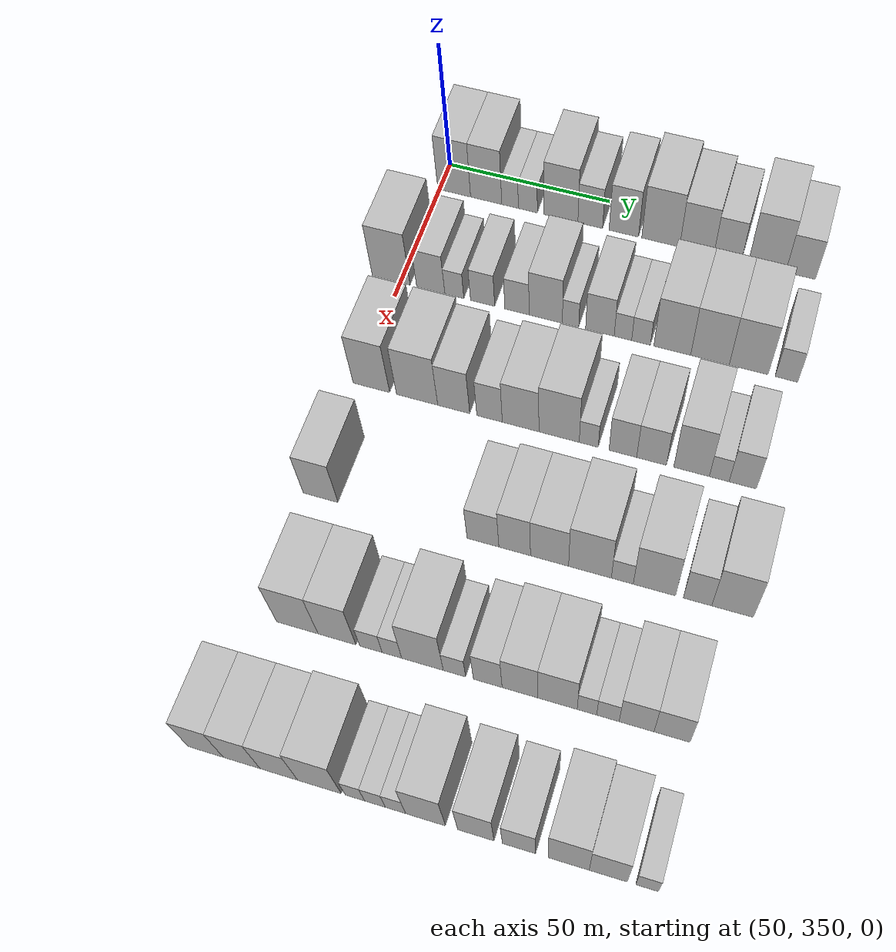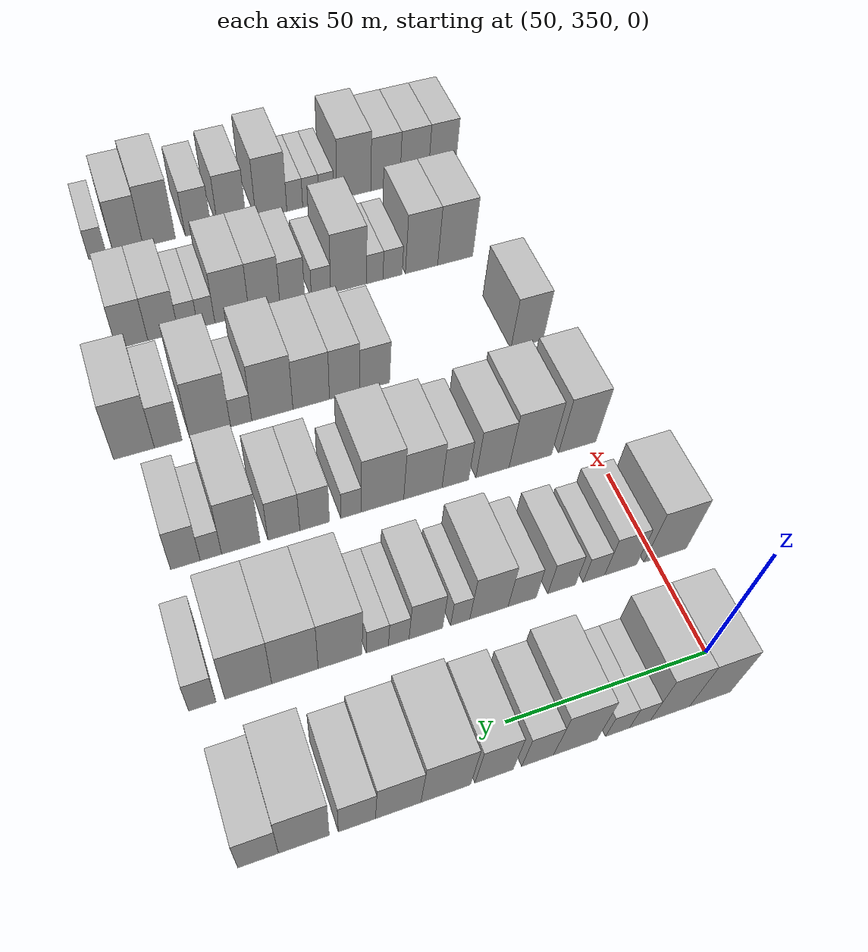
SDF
<sdf version="1.6">
 <world name="default">
  <model name="building_94">
   <static>1</static>
   <pose>50.0000 354.5466 0 0.000000 0.000000 0.000000</pose>
   <link name="link">
    <pose>0 0 12.00 0 0 0</pose>
    <collision name="collision"><geometry><box><size>20.0000 10.2900 24.0000</size></box></geometry></collision>
    <visual name="visual">
     <cast_shadows>0</cast_shadows>
     <geometry><box><size>20.0000 10.2900 24.0000</size></box></geometry>
     <material>
      <script>
       <uri>model://HANNAS_wall/materials/scripts</uri>
       <uri>model://HANNAS_wall/materials/textures</uri>
       <name>vrc/HANNAS_wall</name>
      </script>
     </material>
    </visual>
   </link>
  </model>
  <model name="building_95">
   <static>1</static>
   <pose>50.0000 364.5611 0 0.000000 0.000000 0.000000</pose>
   <link name="link">
    <pose>0 0 12.00 0 0 0</pose>
    <collision name="collision"><geometry><box><size>20.0000 9.7390 24.0000</size></box></geometry></collision>
    <visual name="visual">
     <cast_shadows>0</cast_shadows>
     <geometry><box><size>20.0000 9.7390 24.0000</size></box></geometry>
     <material>
      <script>
       <uri>model://HANNAS_wall/materials/scripts</uri>
       <uri>model://HANNAS_wall/materials/textures</uri>
       <name>vrc/HANNAS_wall</name>
      </script>
     </material>
    </visual>
   </link>
  </model>
  <model name="building_96">
   <static>1</static>
   <pose>50.0000 372.0114 0 0.000000 0.000000 0.000000</pose>
   <link name="link">
    <pose>0 0 6.00 0 0 0</pose>
    <collision name="collision"><geometry><box><size>20.0000 5.1617 12.0000</size></box></geometry></collision>
    <visual name="visual">
     <cast_shadows>0</cast_shadows>
     <geometry><box><size>20.0000 5.1617 12.0000</size></box></geometry>
     <material>
      <script>
       <uri>model://HANNAS_wall/materials/scripts</uri>
       <uri>model://HANNAS_wall/materials/textures</uri>
       <name>vrc/HANNAS_wall</name>
      </script>
     </material>
    </visual>
   </link>
  </model>
  <model name="building_97">
   <static>1</static>
   <pose>50.0000 377.5267 0 0.000000 0.000000 0.000000</pose>
   <link name="link">
    <pose>0 0 6.00 0 0 0</pose>
    <collision name="collision"><geometry><box><size>20.0000 5.8690 12.0000</size></box></geometry></collision>
    <visual name="visual">
     <cast_shadows>0</cast_shadows>
     <geometry><box><size>20.0000 5.8690 12.0000</size></box></geometry>
     <material>
      <script>
       <uri>model://HANNAS_wall/materials/scripts</uri>
       <uri>model://HANNAS_wall/materials/textures</uri>
       <name>vrc/HANNAS_wall</name>
      </script>
     </material>
    </visual>
   </link>
  </model>
  <model name="building_98">
   <static>1</static>
   <pose>50.0000 387.6979 0 0.000000 0.000000 0.000000</pose>
   <link name="link">
    <pose>0 0 12.00 0 0 0</pose>
    <collision name="collision"><geometry><box><size>20.0000 10.4733 24.0000</size></box></geometry></collision>
    <visual name="visual">
     <cast_shadows>0</cast_shadows>
     <geometry><box><size>20.0000 10.4733 24.0000</size></box></geometry>
     <material>
      <script>
       <uri>model://HANNAS_wall/materials/scripts</uri>
       <uri>model://HANNAS_wall/materials/textures</uri>
       <name>vrc/HANNAS_wall</name>
      </script>
     </material>
    </visual>
   </link>
  </model>
  <model name="building_99">
   <static>1</static>
   <pose>50.0000 396.7069 0 0.000000 0.000000 0.000000</pose>
   <link name="link">
    <pose>0 0 9.00 0 0 0</pose>
    <collision name="collision"><geometry><box><size>20.0000 7.5447 18.0000</size></box></geometry></collision>
    <visual name="visual">
     <cast_shadows>0</cast_shadows>
     <geometry><box><size>20.0000 7.5447 18.0000</size></box></geometry>
     <material>
      <script>
       <uri>model://HANNAS_wall/materials/scripts</uri>
       <uri>model://HANNAS_wall/materials/textures</uri>
       <name>vrc/HANNAS_wall</name>
      </script>
     </material>
    </visual>
   </link>
  </model>
  <model name="building_100">
   <static>1</static>
   <pose>50.0000 406.9317 0 0.000000 0.000000 0.000000</pose>
   <link name="link">
    <pose>0 0 10.50 0 0 0</pose>
    <collision name="collision"><geometry><box><size>20.0000 8.9051 21.0000</size></box></geometry></collision>
    <visual name="visual">
     <cast_shadows>0</cast_shadows>
     <geometry><box><size>20.0000 8.9051 21.0000</size></box></geometry>
     <material>
      <script>
       <uri>model://HANNAS_wall/materials/scripts</uri>
       <uri>model://HANNAS_wall/materials/textures</uri>
       <name>vrc/HANNAS_wall</name>
      </script>
     </material>
    </visual>
   </link>
  </model>
  <model name="building_101">
   <static>1</static>
   <pose>50.0000 418.0824 0 0.000000 0.000000 0.000000</pose>
   <link name="link">
    <pose>0 0 12.00 0 0 0</pose>
    <collision name="collision"><geometry><box><size>20.0000 11.3962 24.0000</size></box></geometry></collision>
    <visual name="visual">
     <cast_shadows>0</cast_shadows>
     <geometry><box><size>20.0000 11.3962 24.0000</size></box></geometry>
     <material>
      <script>
       <uri>model://HANNAS_wall/materials/scripts</uri>
       <uri>model://HANNAS_wall/materials/textures</uri>
       <name>vrc/HANNAS_wall</name>
      </script>
     </material>
    </visual>
   </link>
  </model>
  <model name="building_102">
   <static>1</static>
   <pose>50.0000 428.8748 0 0.000000 0.000000 0.000000</pose>
   <link name="link">
    <pose>0 0 10.50 0 0 0</pose>
    <collision name="collision"><geometry><box><size>20.0000 10.1886 21.0000</size></box></geometry></collision>
    <visual name="visual">
     <cast_shadows>0</cast_shadows>
     <geometry><box><size>20.0000 10.1886 21.0000</size></box></geometry>
     <material>
      <script>
       <uri>model://HANNAS_wall/materials/scripts</uri>
       <uri>model://HANNAS_wall/materials/textures</uri>
       <name>vrc/HANNAS_wall</name>
      </script>
     </material>
    </visual>
   </link>
  </model>
  <model name="building_103">
   <static>1</static>
   <pose>50.0000 438.0802 0 0.000000 0.000000 0.000000</pose>
   <link name="link">
    <pose>0 0 9.00 0 0 0</pose>
    <collision name="collision"><geometry><box><size>20.0000 8.2222 18.0000</size></box></geometry></collision>
    <visual name="visual">
     <cast_shadows>0</cast_shadows>
     <geometry><box><size>20.0000 8.2222 18.0000</size></box></geometry>
     <material>
      <script>
       <uri>model://HANNAS_wall/materials/scripts</uri>
       <uri>model://HANNAS_wall/materials/textures</uri>
       <name>vrc/HANNAS_wall</name>
      </script>
     </material>
    </visual>
   </link>
  </model>
  <model name="building_104">
   <static>1</static>
   <pose>50.0000 449.7015 0 0.000000 0.000000 0.000000</pose>
   <link name="link">
    <pose>0 0 12.00 0 0 0</pose>
    <collision name="collision"><geometry><box><size>20.0000 11.0204 24.0000</size></box></geometry></collision>
    <visual name="visual">
     <cast_shadows>0</cast_shadows>
     <geometry><box><size>20.0000 11.0204 24.0000</size></box></geometry>
     <material>
      <script>
       <uri>model://HANNAS_wall/materials/scripts</uri>
       <uri>model://HANNAS_wall/materials/textures</uri>
       <name>vrc/HANNAS_wall</name>
      </script>
     </material>
    </visual>
   </link>
  </model>
  <model name="building_105">
   <static>1</static>
   <pose>50.0000 459.5605 0 0.000000 0.000000 0.000000</pose>
   <link name="link">
    <pose>0 0 9.00 0 0 0</pose>
    <collision name="collision"><geometry><box><size>20.0000 8.6976 18.0000</size></box></geometry></collision>
    <visual name="visual">
     <cast_shadows>0</cast_shadows>
     <geometry><box><size>20.0000 8.6976 18.0000</size></box></geometry>
     <material>
      <script>
       <uri>model://HANNAS_wall/materials/scripts</uri>
       <uri>model://HANNAS_wall/materials/textures</uri>
       <name>vrc/HANNAS_wall</name>
      </script>
     </material>
    </visual>
   </link>
  </model>
  <model name="building_212">
   <static>1</static>
   <pose>85.0000 347.1008 0 0.000000 0.000000 0.000000</pose>
   <link name="link">
    <pose>0 0 12.00 0 0 0</pose>
    <collision name="collision"><geometry><box><size>20.0000 11.4815 24.0000</size></box></geometry></collision>
    <visual name="visual">
     <cast_shadows>0</cast_shadows>
     <geometry><box><size>20.0000 11.4815 24.0000</size></box></geometry>
     <material>
      <script>
       <uri>model://HANNAS_wall/materials/scripts</uri>
       <uri>model://HANNAS_wall/materials/textures</uri>
       <name>vrc/HANNAS_wall</name>
      </script>
     </material>
    </visual>
   </link>
  </model>
  <model name="building_213">
   <static>1</static>
   <pose>85.0000 359.1001 0 0.000000 0.000000 0.000000</pose>
   <link name="link">
    <pose>0 0 9.00 0 0 0</pose>
    <collision name="collision"><geometry><box><size>20.0000 8.5172 18.0000</size></box></geometry></collision>
    <visual name="visual">
     <cast_shadows>0</cast_shadows>
     <geometry><box><size>20.0000 8.5172 18.0000</size></box></geometry>
     <material>
      <script>
       <uri>model://HANNAS_wall/materials/scripts</uri>
       <uri>model://HANNAS_wall/materials/textures</uri>
       <name>vrc/HANNAS_wall</name>
      </script>
     </material>
    </visual>
   </link>
  </model>
  <model name="building_214">
   <static>1</static>
   <pose>85.0000 366.2056 0 0.000000 0.000000 0.000000</pose>
   <link name="link">
    <pose>0 0 6.00 0 0 0</pose>
    <collision name="collision"><geometry><box><size>20.0000 5.6938 12.0000</size></box></geometry></collision>
    <visual name="visual">
     <cast_shadows>0</cast_shadows>
     <geometry><box><size>20.0000 5.6938 12.0000</size></box></geometry>
     <material>
      <script>
       <uri>model://HANNAS_wall/materials/scripts</uri>
       <uri>model://HANNAS_wall/materials/textures</uri>
       <name>vrc/HANNAS_wall</name>
      </script>
     </material>
    </visual>
   </link>
  </model>
  <model name="building_215">
   <static>1</static>
   <pose>85.0000 374.6662 0 0.000000 0.000000 0.000000</pose>
   <link name="link">
    <pose>0 0 7.50 0 0 0</pose>
    <collision name="collision"><geometry><box><size>20.0000 7.2275 15.0000</size></box></geometry></collision>
    <visual name="visual">
     <cast_shadows>0</cast_shadows>
     <geometry><box><size>20.0000 7.2275 15.0000</size></box></geometry>
     <material>
      <script>
       <uri>model://HANNAS_wall/materials/scripts</uri>
       <uri>model://HANNAS_wall/materials/textures</uri>
       <name>vrc/HANNAS_wall</name>
      </script>
     </material>
    </visual>
   </link>
  </model>
  <model name="building_216">
   <static>1</static>
   <pose>85.0000 384.8877 0 0.000000 0.000000 0.000000</pose>
   <link name="link">
    <pose>0 0 7.50 0 0 0</pose>
    <collision name="collision"><geometry><box><size>20.0000 7.2155 15.0000</size></box></geometry></collision>
    <visual name="visual">
     <cast_shadows>0</cast_shadows>
     <geometry><box><size>20.0000 7.2155 15.0000</size></box></geometry>
     <material>
      <script>
       <uri>model://HANNAS_wall/materials/scripts</uri>
       <uri>model://HANNAS_wall/materials/textures</uri>
       <name>vrc/HANNAS_wall</name>
      </script>
     </material>
    </visual>
   </link>
  </model>
  <model name="building_217">
   <static>1</static>
   <pose>85.0000 393.3766 0 0.000000 0.000000 0.000000</pose>
   <link name="link">
    <pose>0 0 10.50 0 0 0</pose>
    <collision name="collision"><geometry><box><size>20.0000 9.7621 21.0000</size></box></geometry></collision>
    <visual name="visual">
     <cast_shadows>0</cast_shadows>
     <geometry><box><size>20.0000 9.7621 21.0000</size></box></geometry>
     <material>
      <script>
       <uri>model://HANNAS_wall/materials/scripts</uri>
       <uri>model://HANNAS_wall/materials/textures</uri>
       <name>vrc/HANNAS_wall</name>
      </script>
     </material>
    </visual>
   </link>
  </model>
  <model name="building_218">
   <static>1</static>
   <pose>85.0000 400.6686 0 0.000000 0.000000 0.000000</pose>
   <link name="link">
    <pose>0 0 6.00 0 0 0</pose>
    <collision name="collision"><geometry><box><size>20.0000 4.8220 12.0000</size></box></geometry></collision>
    <visual name="visual">
     <cast_shadows>0</cast_shadows>
     <geometry><box><size>20.0000 4.8220 12.0000</size></box></geometry>
     <material>
      <script>
       <uri>model://HANNAS_wall/materials/scripts</uri>
       <uri>model://HANNAS_wall/materials/textures</uri>
       <name>vrc/HANNAS_wall</name>
      </script>
     </material>
    </visual>
   </link>
  </model>
  <model name="building_219">
   <static>1</static>
   <pose>85.0000 409.2435 0 0.000000 0.000000 0.000000</pose>
   <link name="link">
    <pose>0 0 9.00 0 0 0</pose>
    <collision name="collision"><geometry><box><size>20.0000 8.3278 18.0000</size></box></geometry></collision>
    <visual name="visual">
     <cast_shadows>0</cast_shadows>
     <geometry><box><size>20.0000 8.3278 18.0000</size></box></geometry>
     <material>
      <script>
       <uri>model://HANNAS_wall/materials/scripts</uri>
       <uri>model://HANNAS_wall/materials/textures</uri>
       <name>vrc/HANNAS_wall</name>
      </script>
     </material>
    </visual>
   </link>
  </model>
  <model name="building_220">
   <static>1</static>
   <pose>85.0000 415.9351 0 0.000000 0.000000 0.000000</pose>
   <link name="link">
    <pose>0 0 6.00 0 0 0</pose>
    <collision name="collision"><geometry><box><size>20.0000 5.0555 12.0000</size></box></geometry></collision>
    <visual name="visual">
     <cast_shadows>0</cast_shadows>
     <geometry><box><size>20.0000 5.0555 12.0000</size></box></geometry>
     <material>
      <script>
       <uri>model://HANNAS_wall/materials/scripts</uri>
       <uri>model://HANNAS_wall/materials/textures</uri>
       <name>vrc/HANNAS_wall</name>
      </script>
     </material>
    </visual>
   </link>
  </model>
  <model name="building_221">
   <static>1</static>
   <pose>85.0000 421.1680 0 0.000000 0.000000 0.000000</pose>
   <link name="link">
    <pose>0 0 6.00 0 0 0</pose>
    <collision name="collision"><geometry><box><size>20.0000 5.4103 12.0000</size></box></geometry></collision>
    <visual name="visual">
     <cast_shadows>0</cast_shadows>
     <geometry><box><size>20.0000 5.4103 12.0000</size></box></geometry>
     <material>
      <script>
       <uri>model://HANNAS_wall/materials/scripts</uri>
       <uri>model://HANNAS_wall/materials/textures</uri>
       <name>vrc/HANNAS_wall</name>
      </script>
     </material>
    </visual>
   </link>
  </model>
  <model name="building_222">
   <static>1</static>
   <pose>85.0000 430.1573 0 0.000000 0.000000 0.000000</pose>
   <link name="link">
    <pose>0 0 12.00 0 0 0</pose>
    <collision name="collision"><geometry><box><size>20.0000 10.5683 24.0000</size></box></geometry></collision>
    <visual name="visual">
     <cast_shadows>0</cast_shadows>
     <geometry><box><size>20.0000 10.5683 24.0000</size></box></geometry>
     <material>
      <script>
       <uri>model://HANNAS_wall/materials/scripts</uri>
       <uri>model://HANNAS_wall/materials/textures</uri>
       <name>vrc/HANNAS_wall</name>
      </script>
     </material>
    </visual>
   </link>
  </model>
  <model name="building_223">
   <static>1</static>
   <pose>85.0000 440.9316 0 0.000000 0.000000 0.000000</pose>
   <link name="link">
    <pose>0 0 12.00 0 0 0</pose>
    <collision name="collision"><geometry><box><size>20.0000 10.9803 24.0000</size></box></geometry></collision>
    <visual name="visual">
     <cast_shadows>0</cast_shadows>
     <geometry><box><size>20.0000 10.9803 24.0000</size></box></geometry>
     <material>
      <script>
       <uri>model://HANNAS_wall/materials/scripts</uri>
       <uri>model://HANNAS_wall/materials/textures</uri>
       <name>vrc/HANNAS_wall</name>
      </script>
     </material>
    </visual>
   </link>
  </model>
  <model name="building_224">
   <static>1</static>
   <pose>85.0000 451.8885 0 0.000000 0.000000 0.000000</pose>
   <link name="link">
    <pose>0 0 12.00 0 0 0</pose>
    <collision name="collision"><geometry><box><size>20.0000 10.9335 24.0000</size></box></geometry></collision>
    <visual name="visual">
     <cast_shadows>0</cast_shadows>
     <geometry><box><size>20.0000 10.9335 24.0000</size></box></geometry>
     <material>
      <script>
       <uri>model://HANNAS_wall/materials/scripts</uri>
       <uri>model://HANNAS_wall/materials/textures</uri>
       <name>vrc/HANNAS_wall</name>
      </script>
     </material>
    </visual>
   </link>
  </model>
  <model name="building_225">
   <static>1</static>
   <pose>85.0000 462.5048 0 0.000000 0.000000 0.000000</pose>
   <link name="link">
    <pose>0 0 7.50 0 0 0</pose>
    <collision name="collision"><geometry><box><size>20.0000 6.2992 15.0000</size></box></geometry></collision>
    <visual name="visual">
     <cast_shadows>0</cast_shadows>
     <geometry><box><size>20.0000 6.2992 15.0000</size></box></geometry>
     <material>
      <script>
       <uri>model://HANNAS_wall/materials/scripts</uri>
       <uri>model://HANNAS_wall/materials/textures</uri>
       <name>vrc/HANNAS_wall</name>
      </script>
     </material>
    </visual>
   </link>
  </model>
  <model name="building_336">
   <static>1</static>
   <pose>120.0000 353.8546 0 0.000000 0.000000 0.000000</pose>
   <link name="link">
    <pose>0 0 12.00 0 0 0</pose>
    <collision name="collision"><geometry><box><size>20.0000 10.6333 24.0000</size></box></geometry></collision>
    <visual name="visual">
     <cast_shadows>0</cast_shadows>
     <geometry><box><size>20.0000 10.6333 24.0000</size></box></geometry>
     <material>
      <script>
       <uri>model://HANNAS_wall/materials/scripts</uri>
       <uri>model://HANNAS_wall/materials/textures</uri>
       <name>vrc/HANNAS_wall</name>
      </script>
     </material>
    </visual>
   </link>
  </model>
  <model name="building_337">
   <static>1</static>
   <pose>120.0000 367.1139 0 0.000000 0.000000 0.000000</pose>
   <link name="link">
    <pose>0 0 12.00 0 0 0</pose>
    <collision name="collision"><geometry><box><size>20.0000 11.8853 24.0000</size></box></geometry></collision>
    <visual name="visual">
     <cast_shadows>0</cast_shadows>
     <geometry><box><size>20.0000 11.8853 24.0000</size></box></geometry>
     <material>
      <script>
       <uri>model://HANNAS_wall/materials/scripts</uri>
       <uri>model://HANNAS_wall/materials/textures</uri>
       <name>vrc/HANNAS_wall</name>
      </script>
     </material>
    </visual>
   </link>
  </model>
  <model name="building_338">
   <static>1</static>
   <pose>120.0000 377.6406 0 0.000000 0.000000 0.000000</pose>
   <link name="link">
    <pose>0 0 10.50 0 0 0</pose>
    <collision name="collision"><geometry><box><size>20.0000 9.1682 21.0000</size></box></geometry></collision>
    <visual name="visual">
     <cast_shadows>0</cast_shadows>
     <geometry><box><size>20.0000 9.1682 21.0000</size></box></geometry>
     <material>
      <script>
       <uri>model://HANNAS_wall/materials/scripts</uri>
       <uri>model://HANNAS_wall/materials/textures</uri>
       <name>vrc/HANNAS_wall</name>
      </script>
     </material>
    </visual>
   </link>
  </model>
  <model name="building_339">
   <static>1</static>
   <pose>120.0000 387.8453 0 0.000000 0.000000 0.000000</pose>
   <link name="link">
    <pose>0 0 9.00 0 0 0</pose>
    <collision name="collision"><geometry><box><size>20.0000 7.2413 18.0000</size></box></geometry></collision>
    <visual name="visual">
     <cast_shadows>0</cast_shadows>
     <geometry><box><size>20.0000 7.2413 18.0000</size></box></geometry>
     <material>
      <script>
       <uri>model://HANNAS_wall/materials/scripts</uri>
       <uri>model://HANNAS_wall/materials/textures</uri>
       <name>vrc/HANNAS_wall</name>
      </script>
     </material>
    </visual>
   </link>
  </model>
  <model name="building_340">
   <static>1</static>
   <pose>120.0000 396.6244 0 0.000000 0.000000 0.000000</pose>
   <link name="link">
    <pose>0 0 10.50 0 0 0</pose>
    <collision name="collision"><geometry><box><size>20.0000 10.3169 21.0000</size></box></geometry></collision>
    <visual name="visual">
     <cast_shadows>0</cast_shadows>
     <geometry><box><size>20.0000 10.3169 21.0000</size></box></geometry>
     <material>
      <script>
       <uri>model://HANNAS_wall/materials/scripts</uri>
       <uri>model://HANNAS_wall/materials/textures</uri>
       <name>vrc/HANNAS_wall</name>
      </script>
     </material>
    </visual>
   </link>
  </model>
  <model name="building_341">
   <static>1</static>
   <pose>120.0000 407.4312 0 0.000000 0.000000 0.000000</pose>
   <link name="link">
    <pose>0 0 12.00 0 0 0</pose>
    <collision name="collision"><geometry><box><size>20.0000 11.2969 24.0000</size></box></geometry></collision>
    <visual name="visual">
     <cast_shadows>0</cast_shadows>
     <geometry><box><size>20.0000 11.2969 24.0000</size></box></geometry>
     <material>
      <script>
       <uri>model://HANNAS_wall/materials/scripts</uri>
       <uri>model://HANNAS_wall/materials/textures</uri>
       <name>vrc/HANNAS_wall</name>
      </script>
     </material>
    </visual>
   </link>
  </model>
  <model name="building_342">
   <static>1</static>
   <pose>120.0000 415.7270 0 0.000000 0.000000 0.000000</pose>
   <link name="link">
    <pose>0 0 6.00 0 0 0</pose>
    <collision name="collision"><geometry><box><size>20.0000 5.2947 12.0000</size></box></geometry></collision>
    <visual name="visual">
     <cast_shadows>0</cast_shadows>
     <geometry><box><size>20.0000 5.2947 12.0000</size></box></geometry>
     <material>
      <script>
       <uri>model://HANNAS_wall/materials/scripts</uri>
       <uri>model://HANNAS_wall/materials/textures</uri>
       <name>vrc/HANNAS_wall</name>
      </script>
     </material>
    </visual>
   </link>
  </model>
  <model name="building_343">
   <static>1</static>
   <pose>120.0000 425.1829 0 0.000000 0.000000 0.000000</pose>
   <link name="link">
    <pose>0 0 9.00 0 0 0</pose>
    <collision name="collision"><geometry><box><size>20.0000 7.6170 18.0000</size></box></geometry></collision>
    <visual name="visual">
     <cast_shadows>0</cast_shadows>
     <geometry><box><size>20.0000 7.6170 18.0000</size></box></geometry>
     <material>
      <script>
       <uri>model://HANNAS_wall/materials/scripts</uri>
       <uri>model://HANNAS_wall/materials/textures</uri>
       <name>vrc/HANNAS_wall</name>
      </script>
     </material>
    </visual>
   </link>
  </model>
  <model name="building_344">
   <static>1</static>
   <pose>120.0000 433.0741 0 0.000000 0.000000 0.000000</pose>
   <link name="link">
    <pose>0 0 9.00 0 0 0</pose>
    <collision name="collision"><geometry><box><size>20.0000 8.1655 18.0000</size></box></geometry></collision>
    <visual name="visual">
     <cast_shadows>0</cast_shadows>
     <geometry><box><size>20.0000 8.1655 18.0000</size></box></geometry>
     <material>
      <script>
       <uri>model://HANNAS_wall/materials/scripts</uri>
       <uri>model://HANNAS_wall/materials/textures</uri>
       <name>vrc/HANNAS_wall</name>
      </script>
     </material>
    </visual>
   </link>
  </model>
  <model name="building_345">
   <static>1</static>
   <pose>120.0000 444.0027 0 0.000000 0.000000 0.000000</pose>
   <link name="link">
    <pose>0 0 12.00 0 0 0</pose>
    <collision name="collision"><geometry><box><size>20.0000 9.6917 24.0000</size></box></geometry></collision>
    <visual name="visual">
     <cast_shadows>0</cast_shadows>
     <geometry><box><size>20.0000 9.6917 24.0000</size></box></geometry>
     <material>
      <script>
       <uri>model://HANNAS_wall/materials/scripts</uri>
       <uri>model://HANNAS_wall/materials/textures</uri>
       <name>vrc/HANNAS_wall</name>
      </script>
     </material>
    </visual>
   </link>
  </model>
  <model name="building_346">
   <static>1</static>
   <pose>120.0000 451.5186 0 0.000000 0.000000 0.000000</pose>
   <link name="link">
    <pose>0 0 6.00 0 0 0</pose>
    <collision name="collision"><geometry><box><size>20.0000 5.3402 12.0000</size></box></geometry></collision>
    <visual name="visual">
     <cast_shadows>0</cast_shadows>
     <geometry><box><size>20.0000 5.3402 12.0000</size></box></geometry>
     <material>
      <script>
       <uri>model://HANNAS_wall/materials/scripts</uri>
       <uri>model://HANNAS_wall/materials/textures</uri>
       <name>vrc/HANNAS_wall</name>
      </script>
     </material>
    </visual>
   </link>
  </model>
  <model name="building_347">
   <static>1</static>
   <pose>120.0000 457.8657 0 0.000000 0.000000 0.000000</pose>
   <link name="link">
    <pose>0 0 9.00 0 0 0</pose>
    <collision name="collision"><geometry><box><size>20.0000 7.3538 18.0000</size></box></geometry></collision>
    <visual name="visual">
     <cast_shadows>0</cast_shadows>
     <geometry><box><size>20.0000 7.3538 18.0000</size></box></geometry>
     <material>
      <script>
       <uri>model://HANNAS_wall/materials/scripts</uri>
       <uri>model://HANNAS_wall/materials/textures</uri>
       <name>vrc/HANNAS_wall</name>
      </script>
     </material>
    </visual>
   </link>
  </model>
  <model name="building_463">
   <static>1</static>
   <pose>155.0000 352.4805 0 0.000000 0.000000 0.000000</pose>
   <link name="link">
    <pose>0 0 10.50 0 0 0</pose>
    <collision name="collision"><geometry><box><size>20.0000 9.7047 21.0000</size></box></geometry></collision>
    <visual name="visual">
     <cast_shadows>0</cast_shadows>
     <geometry><box><size>20.0000 9.7047 21.0000</size></box></geometry>
     <material>
      <script>
       <uri>model://HANNAS_wall/materials/scripts</uri>
       <uri>model://HANNAS_wall/materials/textures</uri>
       <name>vrc/HANNAS_wall</name>
      </script>
     </material>
    </visual>
   </link>
  </model>
  <model name="building_464">
   <static>1</static>
   <pose>155.0000 397.1913 0 0.000000 0.000000 0.000000</pose>
   <link name="link">
    <pose>0 0 9.00 0 0 0</pose>
    <collision name="collision"><geometry><box><size>20.0000 8.5723 18.0000</size></box></geometry></collision>
    <visual name="visual">
     <cast_shadows>0</cast_shadows>
     <geometry><box><size>20.0000 8.5723 18.0000</size></box></geometry>
     <material>
      <script>
       <uri>model://HANNAS_wall/materials/scripts</uri>
       <uri>model://HANNAS_wall/materials/textures</uri>
       <name>vrc/HANNAS_wall</name>
      </script>
     </material>
    </visual>
   </link>
  </model>
  <model name="building_465">
   <static>1</static>
   <pose>155.0000 405.7189 0 0.000000 0.000000 0.000000</pose>
   <link name="link">
    <pose>0 0 10.50 0 0 0</pose>
    <collision name="collision"><geometry><box><size>20.0000 8.4830 21.0000</size></box></geometry></collision>
    <visual name="visual">
     <cast_shadows>0</cast_shadows>
     <geometry><box><size>20.0000 8.4830 21.0000</size></box></geometry>
     <material>
      <script>
       <uri>model://HANNAS_wall/materials/scripts</uri>
       <uri>model://HANNAS_wall/materials/textures</uri>
       <name>vrc/HANNAS_wall</name>
      </script>
     </material>
    </visual>
   </link>
  </model>
  <model name="building_466">
   <static>1</static>
   <pose>155.0000 415.0384 0 0.000000 0.000000 0.000000</pose>
   <link name="link">
    <pose>0 0 10.50 0 0 0</pose>
    <collision name="collision"><geometry><box><size>20.0000 10.1560 21.0000</size></box></geometry></collision>
    <visual name="visual">
     <cast_shadows>0</cast_shadows>
     <geometry><box><size>20.0000 10.1560 21.0000</size></box></geometry>
     <material>
      <script>
       <uri>model://HANNAS_wall/materials/scripts</uri>
       <uri>model://HANNAS_wall/materials/textures</uri>
       <name>vrc/HANNAS_wall</name>
      </script>
     </material>
    </visual>
   </link>
  </model>
  <model name="building_467">
   <static>1</static>
   <pose>155.0000 425.7650 0 0.000000 0.000000 0.000000</pose>
   <link name="link">
    <pose>0 0 12.00 0 0 0</pose>
    <collision name="collision"><geometry><box><size>20.0000 11.2972 24.0000</size></box></geometry></collision>
    <visual name="visual">
     <cast_shadows>0</cast_shadows>
     <geometry><box><size>20.0000 11.2972 24.0000</size></box></geometry>
     <material>
      <script>
       <uri>model://HANNAS_wall/materials/scripts</uri>
       <uri>model://HANNAS_wall/materials/textures</uri>
       <name>vrc/HANNAS_wall</name>
      </script>
     </material>
    </visual>
   </link>
  </model>
  <model name="building_468">
   <static>1</static>
   <pose>155.0000 434.2962 0 0.000000 0.000000 0.000000</pose>
   <link name="link">
    <pose>0 0 6.00 0 0 0</pose>
    <collision name="collision"><geometry><box><size>20.0000 5.7651 12.0000</size></box></geometry></collision>
    <visual name="visual">
     <cast_shadows>0</cast_shadows>
     <geometry><box><size>20.0000 5.7651 12.0000</size></box></geometry>
     <material>
      <script>
       <uri>model://HANNAS_wall/materials/scripts</uri>
       <uri>model://HANNAS_wall/materials/textures</uri>
       <name>vrc/HANNAS_wall</name>
      </script>
     </material>
    </visual>
   </link>
  </model>
  <model name="building_469">
   <static>1</static>
   <pose>155.0000 442.6927 0 0.000000 0.000000 0.000000</pose>
   <link name="link">
    <pose>0 0 12.00 0 0 0</pose>
    <collision name="collision"><geometry><box><size>20.0000 11.0278 24.0000</size></box></geometry></collision>
    <visual name="visual">
     <cast_shadows>0</cast_shadows>
     <geometry><box><size>20.0000 11.0278 24.0000</size></box></geometry>
     <material>
      <script>
       <uri>model://HANNAS_wall/materials/scripts</uri>
       <uri>model://HANNAS_wall/materials/textures</uri>
       <name>vrc/HANNAS_wall</name>
      </script>
     </material>
    </visual>
   </link>
  </model>
  <model name="building_470">
   <static>1</static>
   <pose>155.0000 453.8747 0 0.000000 0.000000 0.000000</pose>
   <link name="link">
    <pose>0 0 9.00 0 0 0</pose>
    <collision name="collision"><geometry><box><size>20.0000 7.3363 18.0000</size></box></geometry></collision>
    <visual name="visual">
     <cast_shadows>0</cast_shadows>
     <geometry><box><size>20.0000 7.3363 18.0000</size></box></geometry>
     <material>
      <script>
       <uri>model://HANNAS_wall/materials/scripts</uri>
       <uri>model://HANNAS_wall/materials/textures</uri>
       <name>vrc/HANNAS_wall</name>
      </script>
     </material>
    </visual>
   </link>
  </model>
  <model name="building_471">
   <static>1</static>
   <pose>155.0000 462.8915 0 0.000000 0.000000 0.000000</pose>
   <link name="link">
    <pose>0 0 12.00 0 0 0</pose>
    <collision name="collision"><geometry><box><size>20.0000 10.6973 24.0000</size></box></geometry></collision>
    <visual name="visual">
     <cast_shadows>0</cast_shadows>
     <geometry><box><size>20.0000 10.6973 24.0000</size></box></geometry>
     <material>
      <script>
       <uri>model://HANNAS_wall/materials/scripts</uri>
       <uri>model://HANNAS_wall/materials/textures</uri>
       <name>vrc/HANNAS_wall</name>
      </script>
     </material>
    </visual>
   </link>
  </model>
  <model name="building_586">
   <static>1</static>
   <pose>190.0000 359.8263 0 0.000000 0.000000 0.000000</pose>
   <link name="link">
    <pose>0 0 12.00 0 0 0</pose>
    <collision name="collision"><geometry><box><size>20.0000 11.0271 24.0000</size></box></geometry></collision>
    <visual name="visual">
     <cast_shadows>0</cast_shadows>
     <geometry><box><size>20.0000 11.0271 24.0000</size></box></geometry>
     <material>
      <script>
       <uri>model://HANNAS_wall/materials/scripts</uri>
       <uri>model://HANNAS_wall/materials/textures</uri>
       <name>vrc/HANNAS_wall</name>
      </script>
     </material>
    </visual>
   </link>
  </model>
  <model name="building_587">
   <static>1</static>
   <pose>190.0000 370.3637 0 0.000000 0.000000 0.000000</pose>
   <link name="link">
    <pose>0 0 12.00 0 0 0</pose>
    <collision name="collision"><geometry><box><size>20.0000 10.0477 24.0000</size></box></geometry></collision>
    <visual name="visual">
     <cast_shadows>0</cast_shadows>
     <geometry><box><size>20.0000 10.0477 24.0000</size></box></geometry>
     <material>
      <script>
       <uri>model://HANNAS_wall/materials/scripts</uri>
       <uri>model://HANNAS_wall/materials/textures</uri>
       <name>vrc/HANNAS_wall</name>
      </script>
     </material>
    </visual>
   </link>
  </model>
  <model name="building_588">
   <static>1</static>
   <pose>190.0000 379.3309 0 0.000000 0.000000 0.000000</pose>
   <link name="link">
    <pose>0 0 6.00 0 0 0</pose>
    <collision name="collision"><geometry><box><size>20.0000 5.8867 12.0000</size></box></geometry></collision>
    <visual name="visual">
     <cast_shadows>0</cast_shadows>
     <geometry><box><size>20.0000 5.8867 12.0000</size></box></geometry>
     <material>
      <script>
       <uri>model://HANNAS_wall/materials/scripts</uri>
       <uri>model://HANNAS_wall/materials/textures</uri>
       <name>vrc/HANNAS_wall</name>
      </script>
     </material>
    </visual>
   </link>
  </model>
  <model name="building_589">
   <static>1</static>
   <pose>190.0000 384.8261 0 0.000000 0.000000 0.000000</pose>
   <link name="link">
    <pose>0 0 6.00 0 0 0</pose>
    <collision name="collision"><geometry><box><size>20.0000 5.1039 12.0000</size></box></geometry></collision>
    <visual name="visual">
     <cast_shadows>0</cast_shadows>
     <geometry><box><size>20.0000 5.1039 12.0000</size></box></geometry>
     <material>
      <script>
       <uri>model://HANNAS_wall/materials/scripts</uri>
       <uri>model://HANNAS_wall/materials/textures</uri>
       <name>vrc/HANNAS_wall</name>
      </script>
     </material>
    </visual>
   </link>
  </model>
  <model name="building_590">
   <static>1</static>
   <pose>190.0000 392.7790 0 0.000000 0.000000 0.000000</pose>
   <link name="link">
    <pose>0 0 12.00 0 0 0</pose>
    <collision name="collision"><geometry><box><size>20.0000 10.8018 24.0000</size></box></geometry></collision>
    <visual name="visual">
     <cast_shadows>0</cast_shadows>
     <geometry><box><size>20.0000 10.8018 24.0000</size></box></geometry>
     <material>
      <script>
       <uri>model://HANNAS_wall/materials/scripts</uri>
       <uri>model://HANNAS_wall/materials/textures</uri>
       <name>vrc/HANNAS_wall</name>
      </script>
     </material>
    </visual>
   </link>
  </model>
  <model name="building_591">
   <static>1</static>
   <pose>190.0000 401.0668 0 0.000000 0.000000 0.000000</pose>
   <link name="link">
    <pose>0 0 6.00 0 0 0</pose>
    <collision name="collision"><geometry><box><size>20.0000 5.7738 12.0000</size></box></geometry></collision>
    <visual name="visual">
     <cast_shadows>0</cast_shadows>
     <geometry><box><size>20.0000 5.7738 12.0000</size></box></geometry>
     <material>
      <script>
       <uri>model://HANNAS_wall/materials/scripts</uri>
       <uri>model://HANNAS_wall/materials/textures</uri>
       <name>vrc/HANNAS_wall</name>
      </script>
     </material>
    </visual>
   </link>
  </model>
  <model name="building_592">
   <static>1</static>
   <pose>190.0000 409.6167 0 0.000000 0.000000 0.000000</pose>
   <link name="link">
    <pose>0 0 9.00 0 0 0</pose>
    <collision name="collision"><geometry><box><size>20.0000 7.3262 18.0000</size></box></geometry></collision>
    <visual name="visual">
     <cast_shadows>0</cast_shadows>
     <geometry><box><size>20.0000 7.3262 18.0000</size></box></geometry>
     <material>
      <script>
       <uri>model://HANNAS_wall/materials/scripts</uri>
       <uri>model://HANNAS_wall/materials/textures</uri>
       <name>vrc/HANNAS_wall</name>
      </script>
     </material>
    </visual>
   </link>
  </model>
  <model name="building_593">
   <static>1</static>
   <pose>190.0000 417.8195 0 0.000000 0.000000 0.000000</pose>
   <link name="link">
    <pose>0 0 10.50 0 0 0</pose>
    <collision name="collision"><geometry><box><size>20.0000 9.0794 21.0000</size></box></geometry></collision>
    <visual name="visual">
     <cast_shadows>0</cast_shadows>
     <geometry><box><size>20.0000 9.0794 21.0000</size></box></geometry>
     <material>
      <script>
       <uri>model://HANNAS_wall/materials/scripts</uri>
       <uri>model://HANNAS_wall/materials/textures</uri>
       <name>vrc/HANNAS_wall</name>
      </script>
     </material>
    </visual>
   </link>
  </model>
  <model name="building_594">
   <static>1</static>
   <pose>190.0000 427.3299 0 0.000000 0.000000 0.000000</pose>
   <link name="link">
    <pose>0 0 10.50 0 0 0</pose>
    <collision name="collision"><geometry><box><size>20.0000 9.9414 21.0000</size></box></geometry></collision>
    <visual name="visual">
     <cast_shadows>0</cast_shadows>
     <geometry><box><size>20.0000 9.9414 21.0000</size></box></geometry>
     <material>
      <script>
       <uri>model://HANNAS_wall/materials/scripts</uri>
       <uri>model://HANNAS_wall/materials/textures</uri>
       <name>vrc/HANNAS_wall</name>
      </script>
     </material>
    </visual>
   </link>
  </model>
  <model name="building_595">
   <static>1</static>
   <pose>190.0000 434.7407 0 0.000000 0.000000 0.000000</pose>
   <link name="link">
    <pose>0 0 6.00 0 0 0</pose>
    <collision name="collision"><geometry><box><size>20.0000 4.8802 12.0000</size></box></geometry></collision>
    <visual name="visual">
     <cast_shadows>0</cast_shadows>
     <geometry><box><size>20.0000 4.8802 12.0000</size></box></geometry>
     <material>
      <script>
       <uri>model://HANNAS_wall/materials/scripts</uri>
       <uri>model://HANNAS_wall/materials/textures</uri>
       <name>vrc/HANNAS_wall</name>
      </script>
     </material>
    </visual>
   </link>
  </model>
  <model name="building_596">
   <static>1</static>
   <pose>190.0000 439.9859 0 0.000000 0.000000 0.000000</pose>
   <link name="link">
    <pose>0 0 6.00 0 0 0</pose>
    <collision name="collision"><geometry><box><size>20.0000 5.6100 12.0000</size></box></geometry></collision>
    <visual name="visual">
     <cast_shadows>0</cast_shadows>
     <geometry><box><size>20.0000 5.6100 12.0000</size></box></geometry>
     <material>
      <script>
       <uri>model://HANNAS_wall/materials/scripts</uri>
       <uri>model://HANNAS_wall/materials/textures</uri>
       <name>vrc/HANNAS_wall</name>
      </script>
     </material>
    </visual>
   </link>
  </model>
  <model name="building_597">
   <static>1</static>
   <pose>190.0000 447.1218 0 0.000000 0.000000 0.000000</pose>
   <link name="link">
    <pose>0 0 9.00 0 0 0</pose>
    <collision name="collision"><geometry><box><size>20.0000 8.6619 18.0000</size></box></geometry></collision>
    <visual name="visual">
     <cast_shadows>0</cast_shadows>
     <geometry><box><size>20.0000 8.6619 18.0000</size></box></geometry>
     <material>
      <script>
       <uri>model://HANNAS_wall/materials/scripts</uri>
       <uri>model://HANNAS_wall/materials/textures</uri>
       <name>vrc/HANNAS_wall</name>
      </script>
     </material>
    </visual>
   </link>
  </model>
  <model name="building_598">
   <static>1</static>
   <pose>190.0000 455.8975 0 0.000000 0.000000 0.000000</pose>
   <link name="link">
    <pose>0 0 9.00 0 0 0</pose>
    <collision name="collision"><geometry><box><size>20.0000 8.8894 18.0000</size></box></geometry></collision>
    <visual name="visual">
     <cast_shadows>0</cast_shadows>
     <geometry><box><size>20.0000 8.8894 18.0000</size></box></geometry>
     <material>
      <script>
       <uri>model://HANNAS_wall/materials/scripts</uri>
       <uri>model://HANNAS_wall/materials/textures</uri>
       <name>vrc/HANNAS_wall</name>
      </script>
     </material>
    </visual>
   </link>
  </model>
  <model name="building_704">
   <static>1</static>
   <pose>225.0000 350.3721 0 0.000000 0.000000 0.000000</pose>
   <link name="link">
    <pose>0 0 10.50 0 0 0</pose>
    <collision name="collision"><geometry><box><size>20.0000 9.0219 21.0000</size></box></geometry></collision>
    <visual name="visual">
     <cast_shadows>0</cast_shadows>
     <geometry><box><size>20.0000 9.0219 21.0000</size></box></geometry>
     <material>
      <script>
       <uri>model://HANNAS_wall/materials/scripts</uri>
       <uri>model://HANNAS_wall/materials/textures</uri>
       <name>vrc/HANNAS_wall</name>
      </script>
     </material>
    </visual>
   </link>
  </model>
  <model name="building_705">
   <static>1</static>
   <pose>225.0000 359.5645 0 0.000000 0.000000 0.000000</pose>
   <link name="link">
    <pose>0 0 10.50 0 0 0</pose>
    <collision name="collision"><geometry><box><size>20.0000 9.3630 21.0000</size></box></geometry></collision>
    <visual name="visual">
     <cast_shadows>0</cast_shadows>
     <geometry><box><size>20.0000 9.3630 21.0000</size></box></geometry>
     <material>
      <script>
       <uri>model://HANNAS_wall/materials/scripts</uri>
       <uri>model://HANNAS_wall/materials/textures</uri>
       <name>vrc/HANNAS_wall</name>
      </script>
     </material>
    </visual>
   </link>
  </model>
  <model name="building_706">
   <static>1</static>
   <pose>225.0000 369.0198 0 0.000000 0.000000 0.000000</pose>
   <link name="link">
    <pose>0 0 10.50 0 0 0</pose>
    <collision name="collision"><geometry><box><size>20.0000 9.5476 21.0000</size></box></geometry></collision>
    <visual name="visual">
     <cast_shadows>0</cast_shadows>
     <geometry><box><size>20.0000 9.5476 21.0000</size></box></geometry>
     <material>
      <script>
       <uri>model://HANNAS_wall/materials/scripts</uri>
       <uri>model://HANNAS_wall/materials/textures</uri>
       <name>vrc/HANNAS_wall</name>
      </script>
     </material>
    </visual>
   </link>
  </model>
  <model name="building_707">
   <static>1</static>
   <pose>225.0000 379.2736 0 0.000000 0.000000 0.000000</pose>
   <link name="link">
    <pose>0 0 12.00 0 0 0</pose>
    <collision name="collision"><geometry><box><size>20.0000 10.9600 24.0000</size></box></geometry></collision>
    <visual name="visual">
     <cast_shadows>0</cast_shadows>
     <geometry><box><size>20.0000 10.9600 24.0000</size></box></geometry>
     <material>
      <script>
       <uri>model://HANNAS_wall/materials/scripts</uri>
       <uri>model://HANNAS_wall/materials/textures</uri>
       <name>vrc/HANNAS_wall</name>
      </script>
     </material>
    </visual>
   </link>
  </model>
  <model name="building_708">
   <static>1</static>
   <pose>225.0000 388.1715 0 0.000000 0.000000 0.000000</pose>
   <link name="link">
    <pose>0 0 6.00 0 0 0</pose>
    <collision name="collision"><geometry><box><size>20.0000 4.8358 12.0000</size></box></geometry></collision>
    <visual name="visual">
     <cast_shadows>0</cast_shadows>
     <geometry><box><size>20.0000 4.8358 12.0000</size></box></geometry>
     <material>
      <script>
       <uri>model://HANNAS_wall/materials/scripts</uri>
       <uri>model://HANNAS_wall/materials/textures</uri>
       <name>vrc/HANNAS_wall</name>
      </script>
     </material>
    </visual>
   </link>
  </model>
  <model name="building_709">
   <static>1</static>
   <pose>225.0000 393.1418 0 0.000000 0.000000 0.000000</pose>
   <link name="link">
    <pose>0 0 6.00 0 0 0</pose>
    <collision name="collision"><geometry><box><size>20.0000 5.1047 12.0000</size></box></geometry></collision>
    <visual name="visual">
     <cast_shadows>0</cast_shadows>
     <geometry><box><size>20.0000 5.1047 12.0000</size></box></geometry>
     <material>
      <script>
       <uri>model://HANNAS_wall/materials/scripts</uri>
       <uri>model://HANNAS_wall/materials/textures</uri>
       <name>vrc/HANNAS_wall</name>
      </script>
     </material>
    </visual>
   </link>
  </model>
  <model name="building_710">
   <static>1</static>
   <pose>225.0000 398.2035 0 0.000000 0.000000 0.000000</pose>
   <link name="link">
    <pose>0 0 6.00 0 0 0</pose>
    <collision name="collision"><geometry><box><size>20.0000 5.0187 12.0000</size></box></geometry></collision>
    <visual name="visual">
     <cast_shadows>0</cast_shadows>
     <geometry><box><size>20.0000 5.0187 12.0000</size></box></geometry>
     <material>
      <script>
       <uri>model://HANNAS_wall/materials/scripts</uri>
       <uri>model://HANNAS_wall/materials/textures</uri>
       <name>vrc/HANNAS_wall</name>
      </script>
     </material>
    </visual>
   </link>
  </model>
  <model name="building_711">
   <static>1</static>
   <pose>225.0000 405.5936 0 0.000000 0.000000 0.000000</pose>
   <link name="link">
    <pose>0 0 12.00 0 0 0</pose>
    <collision name="collision"><geometry><box><size>20.0000 9.7615 24.0000</size></box></geometry></collision>
    <visual name="visual">
     <cast_shadows>0</cast_shadows>
     <geometry><box><size>20.0000 9.7615 24.0000</size></box></geometry>
     <material>
      <script>
       <uri>model://HANNAS_wall/materials/scripts</uri>
       <uri>model://HANNAS_wall/materials/textures</uri>
       <name>vrc/HANNAS_wall</name>
      </script>
     </material>
    </visual>
   </link>
  </model>
  <model name="building_712">
   <static>1</static>
   <pose>225.0000 417.8850 0 0.000000 0.000000 0.000000</pose>
   <link name="link">
    <pose>0 0 10.50 0 0 0</pose>
    <collision name="collision"><geometry><box><size>20.0000 8.8212 21.0000</size></box></geometry></collision>
    <visual name="visual">
     <cast_shadows>0</cast_shadows>
     <geometry><box><size>20.0000 8.8212 21.0000</size></box></geometry>
     <material>
      <script>
       <uri>model://HANNAS_wall/materials/scripts</uri>
       <uri>model://HANNAS_wall/materials/textures</uri>
       <name>vrc/HANNAS_wall</name>
      </script>
     </material>
    </visual>
   </link>
  </model>
  <model name="building_713">
   <static>1</static>
   <pose>225.0000 428.2944 0 0.000000 0.000000 0.000000</pose>
   <link name="link">
    <pose>0 0 9.00 0 0 0</pose>
    <collision name="collision"><geometry><box><size>20.0000 7.9977 18.0000</size></box></geometry></collision>
    <visual name="visual">
     <cast_shadows>0</cast_shadows>
     <geometry><box><size>20.0000 7.9977 18.0000</size></box></geometry>
     <material>
      <script>
       <uri>model://HANNAS_wall/materials/scripts</uri>
       <uri>model://HANNAS_wall/materials/textures</uri>
       <name>vrc/HANNAS_wall</name>
      </script>
     </material>
    </visual>
   </link>
  </model>
  <model name="building_714">
   <static>1</static>
   <pose>225.0000 440.1704 0 0.000000 0.000000 0.000000</pose>
   <link name="link">
    <pose>0 0 12.00 0 0 0</pose>
    <collision name="collision"><geometry><box><size>20.0000 9.7542 24.0000</size></box></geometry></collision>
    <visual name="visual">
     <cast_shadows>0</cast_shadows>
     <geometry><box><size>20.0000 9.7542 24.0000</size></box></geometry>
     <material>
      <script>
       <uri>model://HANNAS_wall/materials/scripts</uri>
       <uri>model://HANNAS_wall/materials/textures</uri>
       <name>vrc/HANNAS_wall</name>
      </script>
     </material>
    </visual>
   </link>
  </model>
  <model name="building_715">
   <static>1</static>
   <pose>225.0000 449.5330 0 0.000000 0.000000 0.000000</pose>
   <link name="link">
    <pose>0 0 10.50 0 0 0</pose>
    <collision name="collision"><geometry><box><size>20.0000 8.9709 21.0000</size></box></geometry></collision>
    <visual name="visual">
     <cast_shadows>0</cast_shadows>
     <geometry><box><size>20.0000 8.9709 21.0000</size></box></geometry>
     <material>
      <script>
       <uri>model://HANNAS_wall/materials/scripts</uri>
       <uri>model://HANNAS_wall/materials/textures</uri>
       <name>vrc/HANNAS_wall</name>
      </script>
     </material>
    </visual>
   </link>
  </model>
  <model name="building_716">
   <static>1</static>
   <pose>225.0000 458.6657 0 0.000000 0.000000 0.000000</pose>
   <link name="link">
    <pose>0 0 6.00 0 0 0</pose>
    <collision name="collision"><geometry><box><size>20.0000 5.2945 12.0000</size></box></geometry></collision>
    <visual name="visual">
     <cast_shadows>0</cast_shadows>
     <geometry><box><size>20.0000 5.2945 12.0000</size></box></geometry>
     <material>
      <script>
       <uri>model://HANNAS_wall/materials/scripts</uri>
       <uri>model://HANNAS_wall/materials/textures</uri>
       <name>vrc/HANNAS_wall</name>
      </script>
     </material>
    </visual>
   </link>
  </model>
 </world>
</sdf>
